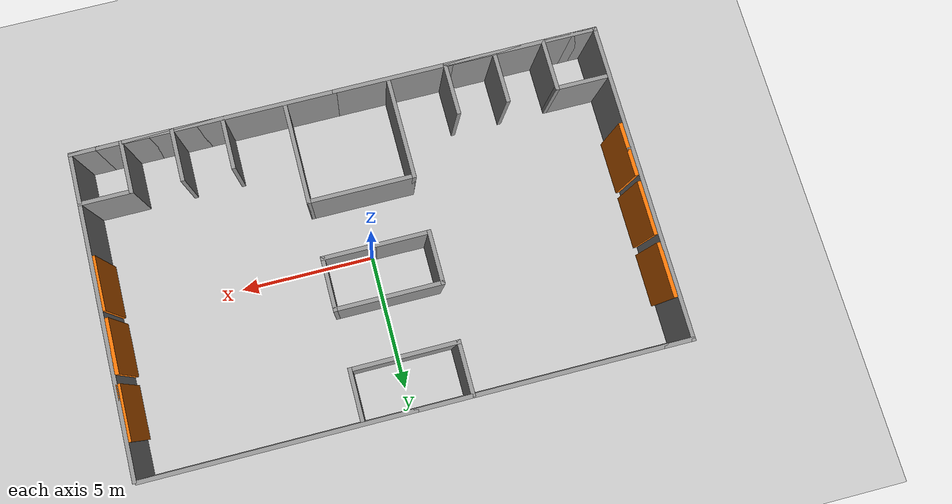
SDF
<sdf version="1.6">
 <world name="default">
  <light name="sun" type="directional">
   <pose>0 0 10 0 -0 0</pose>
   <diffuse>0.8 0.8 0.8 1</diffuse>
   <specular>0.2 0.2 0.2 1</specular>
   <attenuation>
    <range>1000</range>
    <constant>0.9</constant>
    <linear>0.01</linear>
    <quadratic>0.001</quadratic>
   </attenuation>
   <direction>-0.5 0.1 -0.9</direction>
  </light>
  <model name="ground_plane">
   <static>1</static>
   <link name="link">
    <collision name="collision">
     <geometry><plane><normal>0 0 1</normal><size>100 100</size></plane></geometry>
     <surface><friction><ode><mu>100</mu><mu2>50</mu2></ode></friction></surface>
    </collision>
    <visual name="visual">
     <cast_shadows>0</cast_shadows>
     <geometry><plane><normal>0 0 1</normal><size>100 100</size></plane></geometry>
     <material>
      <script><uri>file://media/materials/scripts/gazebo.material</uri><name>Gazebo/Grey</name></script>
     </material>
    </visual>
   </link>
  </model>
  <gravity>0 0 -9.8</gravity>
  <magnetic_field>6e-06 2.3e-05 -4.2e-05</magnetic_field>
  <atmosphere type="adiabatic"/>
  <physics name="default_physics" default="0" type="ode">
   <max_step_size>0.001</max_step_size>
   <real_time_factor>1</real_time_factor>
   <real_time_update_rate>1000</real_time_update_rate>
  </physics>
  <scene><ambient>0.4 0.4 0.4 1</ambient><background>0.7 0.7 0.7 1</background><shadows>1</shadows></scene>
  <spherical_coordinates>
   <surface_model>EARTH_WGS84</surface_model>
   <latitude_deg>0</latitude_deg>
   <longitude_deg>0</longitude_deg>
   <elevation>0</elevation>
   <heading_deg>0</heading_deg>
  </spherical_coordinates>
  <model name="playground_18_12">
   <pose>-0.139131 0.00617 0 0 -0 0</pose>
   <link name="Wall_10">
    <collision name="Wall_10_Collision">
     <geometry><box><size>9.75 0.15 2.5</size></box></geometry>
     <pose>0 0 1.25 0 -0 0</pose>
    </collision>
    <visual name="Wall_10_Visual">
     <pose>0 0 1.25 0 -0 0</pose>
     <geometry><box><size>9.75 0.15 2.5</size></box></geometry>
     <material>
      <script><uri>file://media/materials/scripts/gazebo.material</uri><name>Gazebo/Grey</name></script>
      <ambient>1 1 1 1</ambient>
     </material>
     <meta><layer>0</layer></meta>
    </visual>
    <pose>4.86213 5.85 0 0 -0 0</pose>
   </link>
   <link name="Wall_12">
    <collision name="Wall_12_Collision">
     <geometry><box><size>9 0.15 2.5</size></box></geometry>
     <pose>0 0 1.25 0 -0 0</pose>
    </collision>
    <visual name="Wall_12_Visual">
     <pose>0 0 1.25 0 -0 0</pose>
     <geometry><box><size>9 0.15 2.5</size></box></geometry>
     <material>
      <script><uri>file://media/materials/scripts/gazebo.material</uri><name>Gazebo/Grey</name></script>
      <ambient>1 1 1 1</ambient>
     </material>
     <meta><layer>0</layer></meta>
    </visual>
    <pose>4.48713 -5.85 0 0 -0 0</pose>
   </link>
   <link name="Wall_15">
    <collision name="Wall_15_Collision">
     <geometry><box><size>9 0.15 2.5</size></box></geometry>
     <pose>0 0 1.25 0 -0 0</pose>
    </collision>
    <visual name="Wall_15_Visual">
     <pose>0 0 1.25 0 -0 0</pose>
     <geometry><box><size>9 0.15 2.5</size></box></geometry>
     <material>
      <script><uri>file://media/materials/scripts/gazebo.material</uri><name>Gazebo/Grey</name></script>
      <ambient>1 1 1 1</ambient>
     </material>
     <meta><layer>0</layer></meta>
    </visual>
    <pose>-4.36287 -5.85 0 0 -0 3.14159</pose>
   </link>
   <link name="Wall_19">
    <collision name="Wall_19_Collision">
     <geometry><box><size>9 0.15 2.5</size></box></geometry>
     <pose>0 0 1.25 0 -0 0</pose>
    </collision>
    <visual name="Wall_19_Visual">
     <pose>0 0 1.25 0 -0 0</pose>
     <geometry><box><size>9 0.15 2.5</size></box></geometry>
     <material>
      <script><uri>file://media/materials/scripts/gazebo.material</uri><name>Gazebo/Grey</name></script>
      <ambient>1 1 1 1</ambient>
     </material>
     <meta><layer>0</layer></meta>
    </visual>
    <pose>-4.36287 5.85 0 0 -0 0</pose>
   </link>
   <link name="Wall_21">
    <collision name="Wall_21_Collision">
     <geometry><box><size>2 0.15 2.5</size></box></geometry>
     <pose>0 0 1.25 0 -0 0</pose>
    </collision>
    <visual name="Wall_21_Visual">
     <pose>0 0 1.25 0 -0 0</pose>
     <geometry><box><size>2 0.15 2.5</size></box></geometry>
     <material>
      <script><uri>file://media/materials/scripts/gazebo.material</uri><name>Gazebo/Grey</name></script>
      <ambient>1 1 1 1</ambient>
     </material>
     <meta><layer>0</layer></meta>
    </visual>
    <pose>0.987131 0 0 0 -0 0</pose>
   </link>
   <link name="Wall_22">
    <collision name="Wall_22_Collision">
     <geometry><box><size>2 0.15 2.5</size></box></geometry>
     <pose>0 0 1.25 0 -0 0</pose>
    </collision>
    <visual name="Wall_22_Visual">
     <pose>0 0 1.25 0 -0 0</pose>
     <geometry><box><size>2 0.15 2.5</size></box></geometry>
     <material>
      <script><uri>file://media/materials/scripts/gazebo.material</uri><name>Gazebo/Grey</name></script>
      <ambient>1 1 1 1</ambient>
     </material>
     <meta><layer>0</layer></meta>
    </visual>
    <pose>1.91213 0.925 0 0 -0 1.5708</pose>
   </link>
   <link name="Wall_23">
    <collision name="Wall_23_Collision">
     <geometry><box><size>4 0.15 2.5</size></box></geometry>
     <pose>0 0 1.25 0 -0 0</pose>
    </collision>
    <visual name="Wall_23_Visual">
     <pose>0 0 1.25 0 -0 0</pose>
     <geometry><box><size>4 0.15 2.5</size></box></geometry>
     <material>
      <script><uri>file://media/materials/scripts/gazebo.material</uri><name>Gazebo/Grey</name></script>
      <ambient>1 1 1 1</ambient>
     </material>
     <meta><layer>0</layer></meta>
    </visual>
    <pose>-0.012869 1.85 0 0 -0 3.14159</pose>
   </link>
   <link name="Wall_24">
    <collision name="Wall_24_Collision">
     <geometry><box><size>2 0.15 2.5</size></box></geometry>
     <pose>0 0 1.25 0 -0 0</pose>
    </collision>
    <visual name="Wall_24_Visual">
     <pose>0 0 1.25 0 -0 0</pose>
     <geometry><box><size>2 0.15 2.5</size></box></geometry>
     <material>
      <script><uri>file://media/materials/scripts/gazebo.material</uri><name>Gazebo/Grey</name></script>
      <ambient>1 1 1 1</ambient>
     </material>
     <meta><layer>0</layer></meta>
    </visual>
    <pose>-1.93787 0.925 0 0 0 -1.5708</pose>
   </link>
   <link name="Wall_28">
    <collision name="Wall_28_Collision">
     <geometry><box><size>3.75 0.15 2.5</size></box></geometry>
     <pose>0 0 1.25 0 -0 0</pose>
    </collision>
    <visual name="Wall_28_Visual">
     <pose>0 0 1.25 0 -0 0</pose>
     <geometry><box><size>3.75 0.15 2.5</size></box></geometry>
     <material>
      <script><uri>file://media/materials/scripts/gazebo.material</uri><name>Gazebo/Grey</name></script>
      <ambient>1 1 1 1</ambient>
     </material>
     <meta><layer>0</layer></meta>
    </visual>
    <pose>-1.93787 -3.9 0 0 0 -1.5708</pose>
   </link>
   <link name="Wall_3">
    <collision name="Wall_3_Collision">
     <geometry><box><size>2 0.15 2.5</size></box></geometry>
     <pose>0 0 1.25 0 -0 0</pose>
    </collision>
    <visual name="Wall_3_Visual">
     <pose>0 0 1.25 0 -0 0</pose>
     <geometry><box><size>2 0.15 2.5</size></box></geometry>
     <material>
      <script><uri>file://media/materials/scripts/gazebo.material</uri><name>Gazebo/Grey</name></script>
      <ambient>1 1 1 1</ambient>
     </material>
     <meta><layer>0</layer></meta>
    </visual>
    <pose>-0.862869 0 0 0 -0 0</pose>
   </link>
   <link name="Wall_30">
    <collision name="Wall_30_Collision">
     <geometry><box><size>4 0.15 2.5</size></box></geometry>
     <pose>0 0 1.25 0 -0 0</pose>
    </collision>
    <visual name="Wall_30_Visual">
     <pose>0 0 1.25 0 -0 0</pose>
     <geometry><box><size>4 0.15 2.5</size></box></geometry>
     <material>
      <script><uri>file://media/materials/scripts/gazebo.material</uri><name>Gazebo/Grey</name></script>
      <ambient>1 1 1 1</ambient>
     </material>
     <meta><layer>0</layer></meta>
    </visual>
    <pose>-0.012869 -2.1 0 0 -0 0</pose>
   </link>
   <link name="Wall_32">
    <collision name="Wall_32_Collision">
     <geometry><box><size>3.75 0.15 2.5</size></box></geometry>
     <pose>0 0 1.25 0 -0 0</pose>
    </collision>
    <visual name="Wall_32_Visual">
     <pose>0 0 1.25 0 -0 0</pose>
     <geometry><box><size>3.75 0.15 2.5</size></box></geometry>
     <material>
      <script><uri>file://media/materials/scripts/gazebo.material</uri><name>Gazebo/Grey</name></script>
      <ambient>1 1 1 1</ambient>
     </material>
     <meta><layer>0</layer></meta>
    </visual>
    <pose>1.91213 -3.9 0 0 0 -1.5708</pose>
   </link>
   <link name="Wall_36">
    <collision name="Wall_36_Collision">
     <geometry><box><size>2 0.15 2.5</size></box></geometry>
     <pose>0 0 1.25 0 -0 0</pose>
    </collision>
    <visual name="Wall_36_Visual">
     <pose>0 0 1.25 0 -0 0</pose>
     <geometry><box><size>2 0.15 2.5</size></box></geometry>
     <material>
      <script><uri>file://media/materials/scripts/gazebo.material</uri><name>Gazebo/Grey</name></script>
      <ambient>1 1 1 1</ambient>
     </material>
     <meta><layer>0</layer></meta>
    </visual>
    <pose>-1.93787 4.89151 0 0 -0 1.5708</pose>
   </link>
   <link name="Wall_38">
    <collision name="Wall_38_Collision">
     <geometry><box><size>4.00001 0.15 2.5</size></box></geometry>
     <pose>0 0 1.25 0 -0 0</pose>
    </collision>
    <visual name="Wall_38_Visual">
     <pose>0 0 1.25 0 -0 0</pose>
     <geometry><box><size>4.00001 0.15 2.5</size></box></geometry>
     <material>
      <script><uri>file://media/materials/scripts/gazebo.material</uri><name>Gazebo/Grey</name></script>
      <ambient>1 1 1 1</ambient>
     </material>
     <meta><layer>0</layer></meta>
    </visual>
    <pose>-0.012869 3.97101 0 0 -0 0.002341</pose>
   </link>
   <link name="Wall_39">
    <collision name="Wall_39_Collision">
     <geometry><box><size>2 0.15 2.5</size></box></geometry>
     <pose>0 0 1.25 0 -0 0</pose>
    </collision>
    <visual name="Wall_39_Visual">
     <pose>0 0 1.25 0 -0 0</pose>
     <geometry><box><size>2 0.15 2.5</size></box></geometry>
     <material>
      <script><uri>file://media/materials/scripts/gazebo.material</uri><name>Gazebo/Grey</name></script>
      <ambient>1 1 1 1</ambient>
     </material>
     <meta><layer>0</layer></meta>
    </visual>
    <pose>1.91213 4.90052 0 0 -0 1.5708</pose>
   </link>
   <link name="Wall_41">
    <collision name="Wall_41_Collision">
     <geometry><box><size>1 0.15 2.5</size></box></geometry>
     <pose>0 0 1.25 0 -0 0</pose>
    </collision>
    <visual name="Wall_41_Visual">
     <pose>0 0 1.25 0 -0 0</pose>
     <geometry><box><size>1 0.15 2.5</size></box></geometry>
     <material>
      <script><uri>file://media/materials/scripts/gazebo.material</uri><name>Gazebo/Grey</name></script>
      <ambient>1 1 1 1</ambient>
     </material>
     <meta><layer>0</layer></meta>
    </visual>
    <pose>9.33713 -5.85 0 0 -0 0</pose>
   </link>
   <link name="Wall_43">
    <collision name="Wall_43_Collision">
     <geometry><box><size>11.7946 0.15 2.5</size></box></geometry>
     <pose>0 0 1.25 0 -0 0</pose>
    </collision>
    <visual name="Wall_43_Visual">
     <pose>0 0 1.25 0 -0 0</pose>
     <geometry><box><size>11.7946 0.15 2.5</size></box></geometry>
     <material>
      <script><uri>file://media/materials/scripts/gazebo.material</uri><name>Gazebo/Grey</name></script>
      <ambient>1 1 1 1</ambient>
     </material>
     <meta><layer>0</layer></meta>
    </visual>
    <pose>9.76213 -0.027683 0 0 -0 1.5708</pose>
   </link>
   <link name="Wall_46">
    <collision name="Wall_46_Collision">
     <geometry><box><size>1.12426 0.15 2.5</size></box></geometry>
     <pose>0 0 1.25 0 -0 0</pose>
    </collision>
    <visual name="Wall_46_Visual">
     <pose>0 0 1.25 0 -0 0</pose>
     <geometry><box><size>1.12426 0.15 2.5</size></box></geometry>
     <material>
      <script><uri>file://media/materials/scripts/gazebo.material</uri><name>Gazebo/Grey</name></script>
      <ambient>1 1 1 1</ambient>
     </material>
     <meta><layer>0</layer></meta>
    </visual>
    <pose>-9.275 -5.85 0 0 0 -3.14159</pose>
   </link>
   <link name="Wall_48">
    <collision name="Wall_48_Collision">
     <geometry><box><size>11.85 0.15 2.5</size></box></geometry>
     <pose>0 0 1.25 0 -0 0</pose>
    </collision>
    <visual name="Wall_48_Visual">
     <pose>0 0 1.25 0 -0 0</pose>
     <geometry><box><size>11.85 0.15 2.5</size></box></geometry>
     <material>
      <script><uri>file://media/materials/scripts/gazebo.material</uri><name>Gazebo/Grey</name></script>
      <ambient>1 1 1 1</ambient>
     </material>
     <meta><layer>0</layer></meta>
    </visual>
    <pose>-9.76213 0 0 0 -0 1.5708</pose>
   </link>
   <link name="Wall_50">
    <collision name="Wall_50_Collision">
     <geometry><box><size>1.12426 0.15 2.5</size></box></geometry>
     <pose>0 0 1.25 0 -0 0</pose>
    </collision>
    <visual name="Wall_50_Visual">
     <pose>0 0 1.25 0 -0 0</pose>
     <geometry><box><size>1.12426 0.15 2.5</size></box></geometry>
     <material>
      <script><uri>file://media/materials/scripts/gazebo.material</uri><name>Gazebo/Grey</name></script>
      <ambient>1 1 1 1</ambient>
     </material>
     <meta><layer>0</layer></meta>
    </visual>
    <pose>-9.275 5.85 0 0 0 -3.14159</pose>
   </link>
   <link name="Wall_52">
    <collision name="Wall_52_Collision">
     <geometry><box><size>2.12426 0.15 2.5</size></box></geometry>
     <pose>0 0 1.25 0 -0 0</pose>
    </collision>
    <visual name="Wall_52_Visual">
     <pose>0 0 1.25 0 -0 0</pose>
     <geometry><box><size>2.12426 0.15 2.5</size></box></geometry>
     <material>
      <script><uri>file://media/materials/scripts/gazebo.material</uri><name>Gazebo/Grey</name></script>
      <ambient>1 1 1 1</ambient>
     </material>
     <meta><layer>0</layer></meta>
    </visual>
    <pose>-8.775 -5.85 0 0 -0 0</pose>
   </link>
   <link name="Wall_53">
    <collision name="Wall_53_Collision">
     <geometry><box><size>2 0.15 2.5</size></box></geometry>
     <pose>0 0 1.25 0 -0 0</pose>
    </collision>
    <visual name="Wall_53_Visual">
     <pose>0 0 1.25 0 -0 0</pose>
     <geometry><box><size>2 0.15 2.5</size></box></geometry>
     <material>
      <script><uri>file://media/materials/scripts/gazebo.material</uri><name>Gazebo/Grey</name></script>
      <ambient>1 1 1 1</ambient>
     </material>
     <meta><layer>0</layer></meta>
    </visual>
    <pose>-7.78787 -4.925 0 0 -0 1.5708</pose>
   </link>
   <link name="Wall_54">
    <collision name="Wall_54_Collision">
     <geometry><box><size>2 0.15 2.5</size></box></geometry>
     <pose>0 0 1.25 0 -0 0</pose>
    </collision>
    <visual name="Wall_54_Visual">
     <pose>0 0 1.25 0 -0 0</pose>
     <geometry><box><size>2 0.15 2.5</size></box></geometry>
     <material>
      <script><uri>file://media/materials/scripts/gazebo.material</uri><name>Gazebo/Grey</name></script>
      <ambient>1 1 1 1</ambient>
     </material>
     <meta><layer>0</layer></meta>
    </visual>
    <pose>-8.71287 -4 0 0 -0 3.14159</pose>
   </link>
   <link name="Wall_56">
    <collision name="Wall_56_Collision">
     <geometry><box><size>2 0.15 2.5</size></box></geometry>
     <pose>0 0 1.25 0 -0 0</pose>
    </collision>
    <visual name="Wall_56_Visual">
     <pose>0 0 1.25 0 -0 0</pose>
     <geometry><box><size>2 0.15 2.5</size></box></geometry>
     <material>
      <script><uri>file://media/materials/scripts/gazebo.material</uri><name>Gazebo/Grey</name></script>
      <ambient>1 1 1 1</ambient>
     </material>
     <meta><layer>0</layer></meta>
    </visual>
    <pose>-6.86287 -5.85 0 0 -0 0</pose>
   </link>
   <link name="Wall_57">
    <collision name="Wall_57_Collision">
     <geometry><box><size>2 0.15 2.5</size></box></geometry>
     <pose>0 0 1.25 0 -0 0</pose>
    </collision>
    <visual name="Wall_57_Visual">
     <pose>0 0 1.25 0 -0 0</pose>
     <geometry><box><size>2 0.15 2.5</size></box></geometry>
     <material>
      <script><uri>file://media/materials/scripts/gazebo.material</uri><name>Gazebo/Grey</name></script>
      <ambient>1 1 1 1</ambient>
     </material>
     <meta><layer>0</layer></meta>
    </visual>
    <pose>-5.93787 -4.925 0 0 -0 1.5708</pose>
   </link>
   <link name="Wall_59">
    <collision name="Wall_59_Collision">
     <geometry><box><size>2 0.15 2.5</size></box></geometry>
     <pose>0 0 1.25 0 -0 0</pose>
    </collision>
    <visual name="Wall_59_Visual">
     <pose>0 0 1.25 0 -0 0</pose>
     <geometry><box><size>2 0.15 2.5</size></box></geometry>
     <material>
      <script><uri>file://media/materials/scripts/gazebo.material</uri><name>Gazebo/Grey</name></script>
      <ambient>1 1 1 1</ambient>
     </material>
     <meta><layer>0</layer></meta>
    </visual>
    <pose>-5.01287 -5.85 0 0 -0 0</pose>
   </link>
   <link name="Wall_60">
    <collision name="Wall_60_Collision">
     <geometry><box><size>2 0.15 2.5</size></box></geometry>
     <pose>0 0 1.25 0 -0 0</pose>
    </collision>
    <visual name="Wall_60_Visual">
     <pose>0 0 1.25 0 -0 0</pose>
     <geometry><box><size>2 0.15 2.5</size></box></geometry>
     <material>
      <script><uri>file://media/materials/scripts/gazebo.material</uri><name>Gazebo/Grey</name></script>
      <ambient>1 1 1 1</ambient>
     </material>
     <meta><layer>0</layer></meta>
    </visual>
    <pose>-4.08787 -4.925 0 0 -0 1.5708</pose>
   </link>
   <link name="Wall_62">
    <collision name="Wall_62_Collision">
     <geometry><box><size>2 0.15 2.5</size></box></geometry>
     <pose>0 0 1.25 0 -0 0</pose>
    </collision>
    <visual name="Wall_62_Visual">
     <pose>0 0 1.25 0 -0 0</pose>
     <geometry><box><size>2 0.15 2.5</size></box></geometry>
     <material>
      <script><uri>file://media/materials/scripts/gazebo.material</uri><name>Gazebo/Grey</name></script>
      <ambient>1 1 1 1</ambient>
     </material>
     <meta><layer>0</layer></meta>
    </visual>
    <pose>8.83713 -5.85 0 0 -0 3.14159</pose>
   </link>
   <link name="Wall_63">
    <collision name="Wall_63_Collision">
     <geometry><box><size>2 0.15 2.5</size></box></geometry>
     <pose>0 0 1.25 0 -0 0</pose>
    </collision>
    <visual name="Wall_63_Visual">
     <pose>0 0 1.25 0 -0 0</pose>
     <geometry><box><size>2 0.15 2.5</size></box></geometry>
     <material>
      <script><uri>file://media/materials/scripts/gazebo.material</uri><name>Gazebo/Grey</name></script>
      <ambient>1 1 1 1</ambient>
     </material>
     <meta><layer>0</layer></meta>
    </visual>
    <pose>7.91213 -4.925 0 0 -0 1.5708</pose>
   </link>
   <link name="Wall_64">
    <collision name="Wall_64_Collision">
     <geometry><box><size>2 0.15 2.5</size></box></geometry>
     <pose>0 0 1.25 0 -0 0</pose>
    </collision>
    <visual name="Wall_64_Visual">
     <pose>0 0 1.25 0 -0 0</pose>
     <geometry><box><size>2 0.15 2.5</size></box></geometry>
     <material>
      <script><uri>file://media/materials/scripts/gazebo.material</uri><name>Gazebo/Grey</name></script>
      <ambient>1 1 1 1</ambient>
     </material>
     <meta><layer>0</layer></meta>
    </visual>
    <pose>8.83713 -4 0 0 -0 0</pose>
   </link>
   <link name="Wall_66">
    <collision name="Wall_66_Collision">
     <geometry><box><size>2 0.15 2.5</size></box></geometry>
     <pose>0 0 1.25 0 -0 0</pose>
    </collision>
    <visual name="Wall_66_Visual">
     <pose>0 0 1.25 0 -0 0</pose>
     <geometry><box><size>2 0.15 2.5</size></box></geometry>
     <material>
      <script><uri>file://media/materials/scripts/gazebo.material</uri><name>Gazebo/Grey</name></script>
      <ambient>1 1 1 1</ambient>
     </material>
     <meta><layer>0</layer></meta>
    </visual>
    <pose>6.98713 -5.85 0 0 -0 3.14159</pose>
   </link>
   <link name="Wall_67">
    <collision name="Wall_67_Collision">
     <geometry><box><size>2 0.15 2.5</size></box></geometry>
     <pose>0 0 1.25 0 -0 0</pose>
    </collision>
    <visual name="Wall_67_Visual">
     <pose>0 0 1.25 0 -0 0</pose>
     <geometry><box><size>2 0.15 2.5</size></box></geometry>
     <material>
      <script><uri>file://media/materials/scripts/gazebo.material</uri><name>Gazebo/Grey</name></script>
      <ambient>1 1 1 1</ambient>
     </material>
     <meta><layer>0</layer></meta>
    </visual>
    <pose>6.06213 -4.925 0 0 -0 1.5708</pose>
   </link>
   <link name="Wall_69">
    <collision name="Wall_69_Collision">
     <geometry><box><size>2 0.15 2.5</size></box></geometry>
     <pose>0 0 1.25 0 -0 0</pose>
    </collision>
    <visual name="Wall_69_Visual">
     <pose>0 0 1.25 0 -0 0</pose>
     <geometry><box><size>2 0.15 2.5</size></box></geometry>
     <material>
      <script><uri>file://media/materials/scripts/gazebo.material</uri><name>Gazebo/Grey</name></script>
      <ambient>1 1 1 1</ambient>
     </material>
     <meta><layer>0</layer></meta>
    </visual>
    <pose>5.13713 -5.85 0 0 -0 3.14159</pose>
   </link>
   <link name="Wall_70">
    <collision name="Wall_70_Collision">
     <geometry><box><size>2 0.15 2.5</size></box></geometry>
     <pose>0 0 1.25 0 -0 0</pose>
    </collision>
    <visual name="Wall_70_Visual">
     <pose>0 0 1.25 0 -0 0</pose>
     <geometry><box><size>2 0.15 2.5</size></box></geometry>
     <material>
      <script><uri>file://media/materials/scripts/gazebo.material</uri><name>Gazebo/Grey</name></script>
      <ambient>1 1 1 1</ambient>
     </material>
     <meta><layer>0</layer></meta>
    </visual>
    <pose>4.21213 -4.925 0 0 -0 1.5708</pose>
   </link>
   <link name="Wall_82">
    <collision name="Wall_82_Collision">
     <geometry><box><size>0.15 0.15 2.5</size></box></geometry>
     <pose>0 0 1.25 0 -0 0</pose>
    </collision>
    <visual name="Wall_82_Visual">
     <pose>0 0 1.25 0 -0 0</pose>
     <geometry><box><size>0.15 0.15 2.5</size></box></geometry>
     <material>
      <script><uri>file://media/materials/scripts/gazebo.material</uri><name>Gazebo/Grey</name></script>
      <ambient>1 1 1 1</ambient>
     </material>
     <meta><layer>0</layer></meta>
    </visual>
    <pose>-9.63787 -1.15 0 0 -0 0</pose>
   </link>
   <link name="Wall_89">
    <collision name="Wall_89_Collision">
     <geometry><box><size>2 0.15 2.5</size></box></geometry>
     <pose>0 0 1.25 0 -0 0</pose>
    </collision>
    <visual name="Wall_89_Visual">
     <pose>0 0 1.25 0 -0 0</pose>
     <geometry><box><size>2 0.15 2.5</size></box></geometry>
     <material>
      <script><uri>file://media/materials/scripts/gazebo.material</uri><name>Gazebo/Grey</name></script>
      <ambient>0.996078 0.47451 0.0196078 1</ambient>
     </material>
     <meta><layer>0</layer></meta>
    </visual>
    <pose>-9.62326 3.33264 0 0 0 -1.5708</pose>
   </link>
   <link name="Wall_91">
    <collision name="Wall_91_Collision">
     <geometry><box><size>2 0.15 2.5</size></box></geometry>
     <pose>0 0 1.25 0 -0 0</pose>
    </collision>
    <visual name="Wall_91_Visual">
     <pose>0 0 1.25 0 -0 0</pose>
     <geometry><box><size>2 0.15 2.5</size></box></geometry>
     <material>
      <script><uri>file://media/materials/scripts/gazebo.material</uri><name>Gazebo/Grey</name></script>
      <ambient>0.996078 0.47451 0.0196078 1</ambient>
     </material>
     <meta><layer>0</layer></meta>
    </visual>
    <pose>-9.62134 1.04871 0 0 0 -1.5708</pose>
   </link>
   <link name="Wall_93">
    <collision name="Wall_93_Collision">
     <geometry><box><size>2 0.15 2.5</size></box></geometry>
     <pose>0 0 1.25 0 -0 0</pose>
    </collision>
    <visual name="Wall_93_Visual">
     <pose>0 0 1.25 0 -0 0</pose>
     <geometry><box><size>2 0.15 2.5</size></box></geometry>
     <material>
      <script><uri>file://media/materials/scripts/gazebo.material</uri><name>Gazebo/Grey</name></script>
      <ambient>0.996078 0.47451 0.0196078 1</ambient>
     </material>
     <meta><layer>0</layer></meta>
    </visual>
    <pose>-9.61586 -1.1649 0 0 0 -1.5708</pose>
   </link>
   <link name="Wall_95">
    <collision name="Wall_95_Collision">
     <geometry><box><size>2 0.15 2.5</size></box></geometry>
     <pose>0 0 1.25 0 -0 0</pose>
    </collision>
    <visual name="Wall_95_Visual">
     <pose>0 0 1.25 0 -0 0</pose>
     <geometry><box><size>2 0.15 2.5</size></box></geometry>
     <material>
      <script><uri>file://media/materials/scripts/gazebo.material</uri><name>Gazebo/Grey</name></script>
      <ambient>0.996078 0.47451 0.0196078 1</ambient>
     </material>
     <meta><layer>0</layer></meta>
    </visual>
    <pose>9.66276 -1.05252 0 0 0 -1.5708</pose>
   </link>
   <link name="Wall_97">
    <collision name="Wall_97_Collision">
     <geometry><box><size>2 0.15 2.5</size></box></geometry>
     <pose>0 0 1.25 0 -0 0</pose>
    </collision>
    <visual name="Wall_97_Visual">
     <pose>0 0 1.25 0 -0 0</pose>
     <geometry><box><size>2 0.15 2.5</size></box></geometry>
     <material>
      <script><uri>file://media/materials/scripts/gazebo.material</uri><name>Gazebo/Grey</name></script>
      <ambient>0.996078 0.47451 0.0196078 1</ambient>
     </material>
     <meta><layer>0</layer></meta>
    </visual>
    <pose>9.62926 1.18866 0 0 -0 1.5708</pose>
   </link>
   <link name="Wall_99">
    <collision name="Wall_99_Collision">
     <geometry><box><size>2 0.15 2.5</size></box></geometry>
     <pose>0 0 1.25 0 -0 0</pose>
    </collision>
    <visual name="Wall_99_Visual">
     <pose>0 0 1.25 0 -0 0</pose>
     <geometry><box><size>2 0.15 2.5</size></box></geometry>
     <material>
      <script><uri>file://media/materials/scripts/gazebo.material</uri><name>Gazebo/Grey</name></script>
      <ambient>0.996078 0.47451 0.0196078 1</ambient>
     </material>
     <meta><layer>0</layer></meta>
    </visual>
    <pose>9.66723 3.50475 0 0 -0 1.5708</pose>
   </link>
   <static>1</static>
  </model>
 </world>
</sdf>
